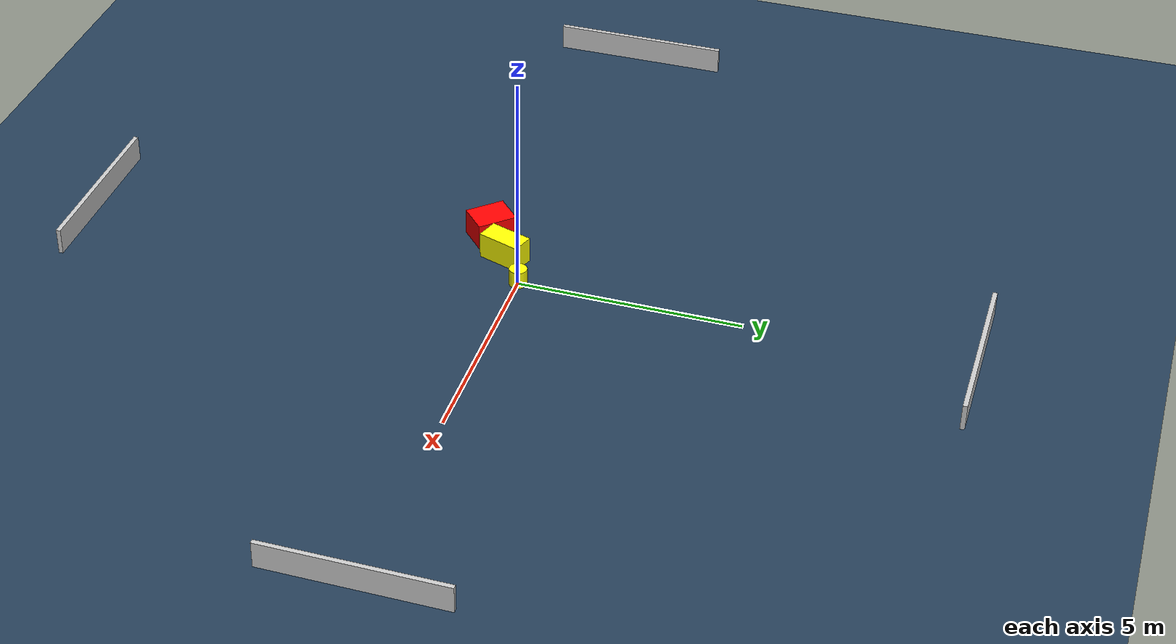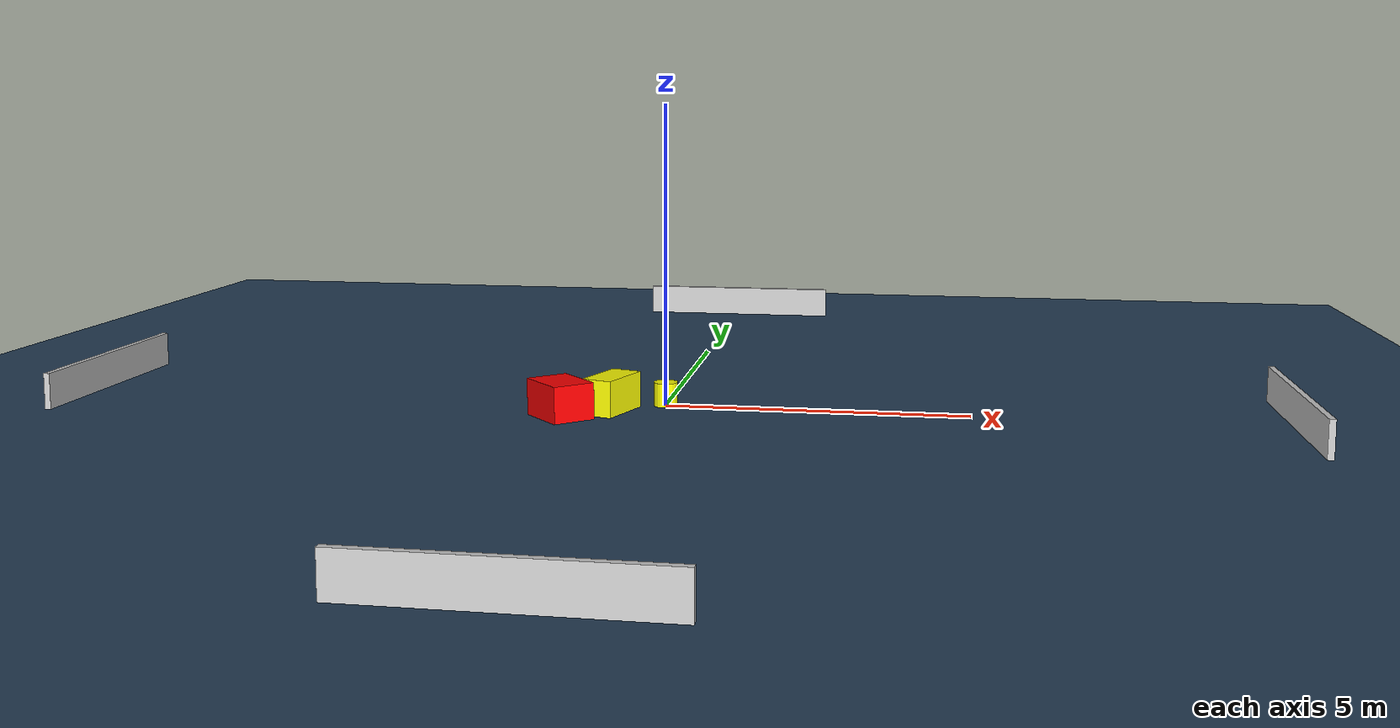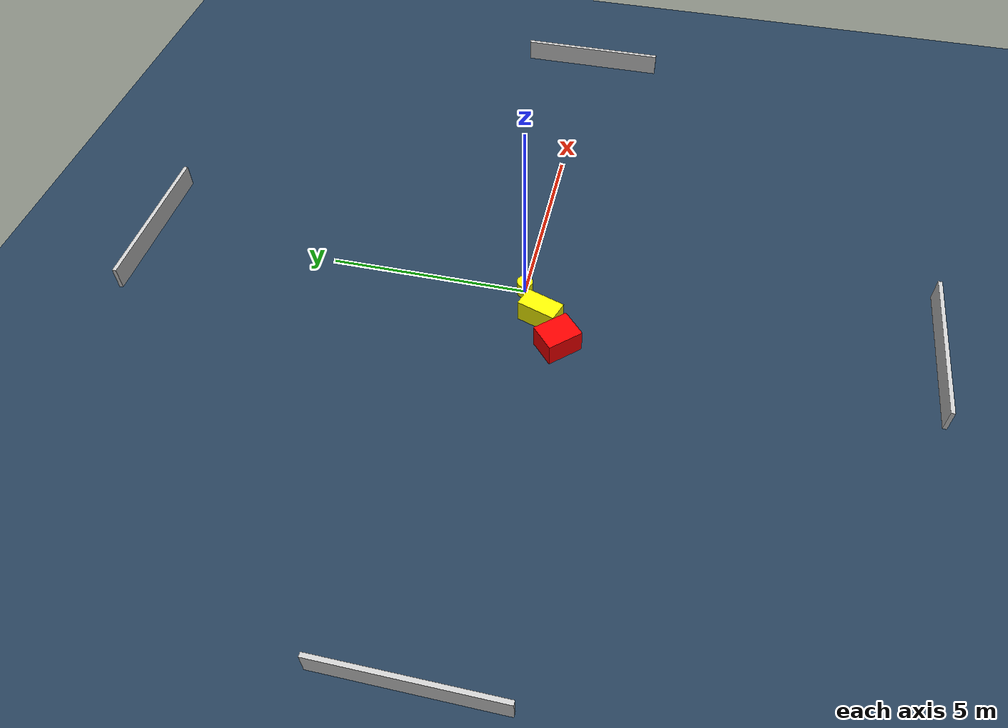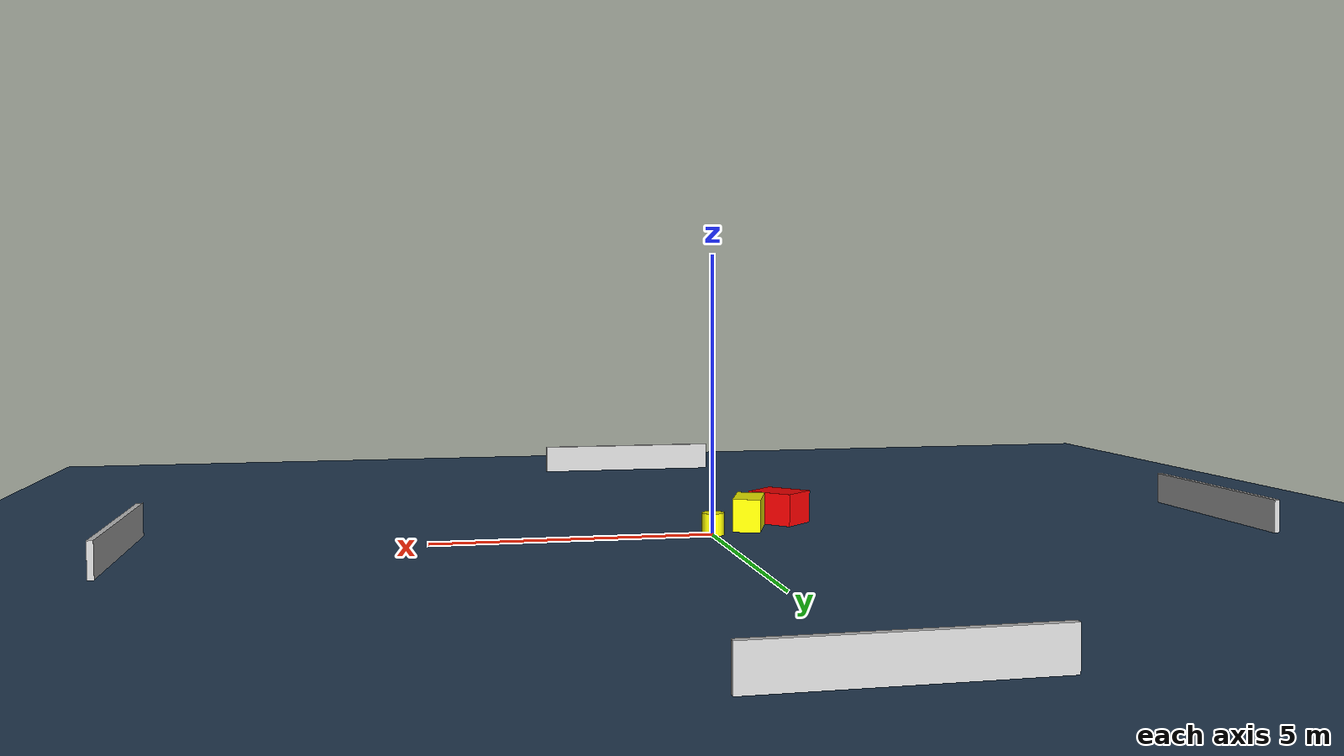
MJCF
<?xml version="1.0" ?>
<mujoco model="generated_environment">
  <option timestep="0.01" integrator="RK4" cone="elliptic"/>
  <default>
    <geom density="1"/>
  </default>
  <asset>
    <texture builtin="gradient" height="3072" name="skybox" rgb1="0.3 0.5 0.7" rgb2="0 0 0" type="skybox" width="512"/>
    <texture builtin="checker" height="300" name="groundplane" rgb1="0.2 0.3 0.4" rgb2="0.1 0.2 0.3" type="2d" width="300"/>
    <material name="groundplane" reflectance="0.2" texrepeat="5 5" texture="groundplane"/>
  </asset>
  <worldbody>
    <light dir="0 0 -1" directional="true" pos="0 0 1.5"/>
    <geom condim="3" friction="0.5 0.005 0.001" material="groundplane" name="floor" pos="0 0 0" size="0 0 0.05" type="plane"/>
    <body name="walls">
      <geom name="wall_1" condim="4" pos="-10.0 0.0 0.3" rgba="0.800000011920929 0.800000011920929 0.800000011920929 1.0" size="0.05 2.0 0.3" type="box"/>
      <geom name="wall_2" condim="4" pos="10.0 0.0 0.3" rgba="0.800000011920929 0.800000011920929 0.800000011920929 1.0" size="0.05 2.0 0.3" type="box"/>
      <geom name="wall_3" condim="4" pos="0.0 -10.0 0.3" rgba="0.800000011920929 0.800000011920929 0.800000011920929 1.0" size="2.0 0.05 0.3" type="box"/>
      <geom name="wall_4" condim="4" pos="0.0 10.0 0.3" rgba="0.800000011920929 0.800000011920929 0.800000011920929 1.0" size="2.0 0.05 0.3" type="box"/>
    </body>
    <body name="robot">
      <joint name="joint_x" type="slide" pos="0 0 0" axis="1 0 0"/>
      <joint name="joint_y" type="slide" pos="0 0 0" axis="0 1 0"/>
      <geom name="robot" type="cylinder" pos="0.0 0.0 0.2" size="0.2 0.2 0.0" mass="5.0" friction="1.0 0.005 0.0001" condim="4" rgba="1.0 1.0 0.0 1.0"/>
    </body>
    <body name="obstacle_1_movable">
      <geom name="obstacle_1_movable" condim="4" pos="-0.8016192558996938 -0.5640075338744707 0.3" euler="0 0 161.16760532672606" friction="0.0 0.005 0.001" rgba="1.0 1.0 0.0 1.0" size="0.25582738084723233 0.4932814843433411 0.3" type="box" mass="0.1"/>
      <joint type="free"/>
    </body>
    <body name="obstacle_2_static">
      <geom name="obstacle_2_static" condim="4" pos="-1.5324007806796827 -1.1247922445729108 0.3" euler="0 0 222.64510245995484" friction="0.0 0.005 0.001" rgba="1.0 0.0 0.0 1.0" size="0.3612271078525773 0.4509859145124146 0.3" type="box"/>
    </body>
  </worldbody>
  <actuator>
    <motor name="actuator_x" joint="joint_x" gear="1" ctrlrange="-1 1"/>
    <motor name="actuator_y" joint="joint_y" gear="1" ctrlrange="-1 1"/>
  </actuator>
</mujoco>
